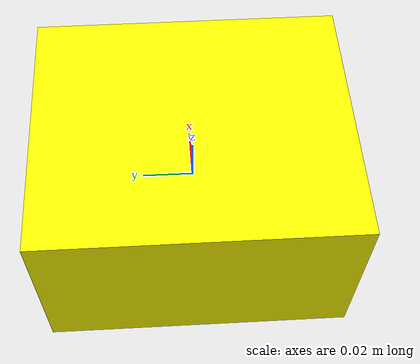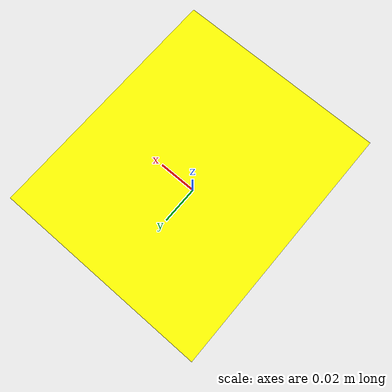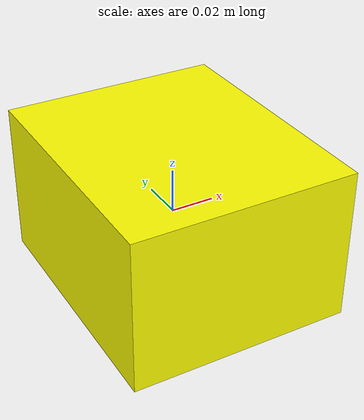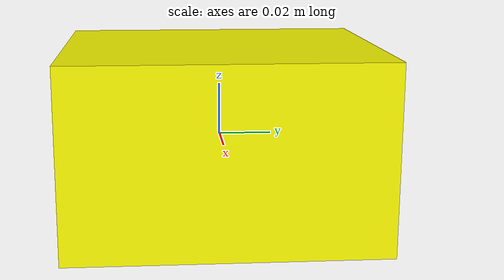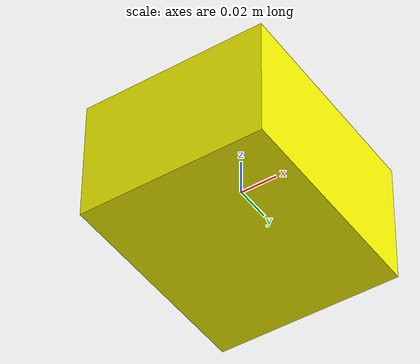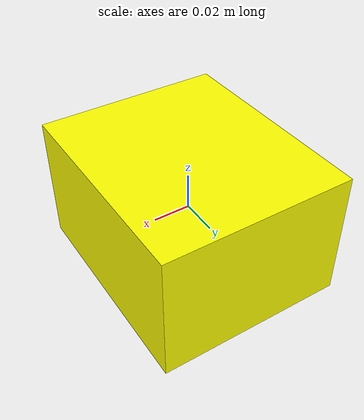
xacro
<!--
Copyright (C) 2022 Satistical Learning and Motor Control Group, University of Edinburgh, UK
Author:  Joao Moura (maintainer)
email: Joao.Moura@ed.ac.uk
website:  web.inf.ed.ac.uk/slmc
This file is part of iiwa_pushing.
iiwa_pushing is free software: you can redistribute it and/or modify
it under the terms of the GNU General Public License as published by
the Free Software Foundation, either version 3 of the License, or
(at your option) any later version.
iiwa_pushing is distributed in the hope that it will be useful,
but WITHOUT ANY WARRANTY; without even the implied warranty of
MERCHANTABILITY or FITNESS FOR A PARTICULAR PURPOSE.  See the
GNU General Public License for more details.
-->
<?xml version="1.0"?>
<robot name="pushing_box" xmlns:xacro="http://www.ros.org/wiki/xacro">

    <!-- Import box macro -->
    <xacro:include filename="$(find nextage_pushing)/urdf/pushing_box.xacro"/>

    <!-- Fix to world just for testing -->
    <link name="world"/>

    <!-- pushing_box -->
    <xacro:pushing_box parent="world">
        <origin xyz="0 0 0" rpy="0 0 0"/>
    </xacro:pushing_box>

</robot>

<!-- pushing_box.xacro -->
<robot name="pushing_box" xmlns:xacro="http://ros.org/wiki/xacro">

    <!-- Define pushing_box -->
    <xacro:macro name="pushing_box" params="parent *origin">

        <link name="base_link_pushing_box">
            <visual>
                <geometry>
                    <box size="0.101 0.119 0.0705"/>
                </geometry>
                <material name="green">
                    <color rgba="1.0 1.0 0.0 1"/>
                </material>
            </visual>
        </link>

        <joint name="base_link_joint" type="floating">
            <parent link="${parent}"/>
            <child link="base_link_pushing_box"/>
            <origin xyz="0 0 0" rpy="0 0 0"/>
        </joint>

    </xacro:macro>

</robot>
